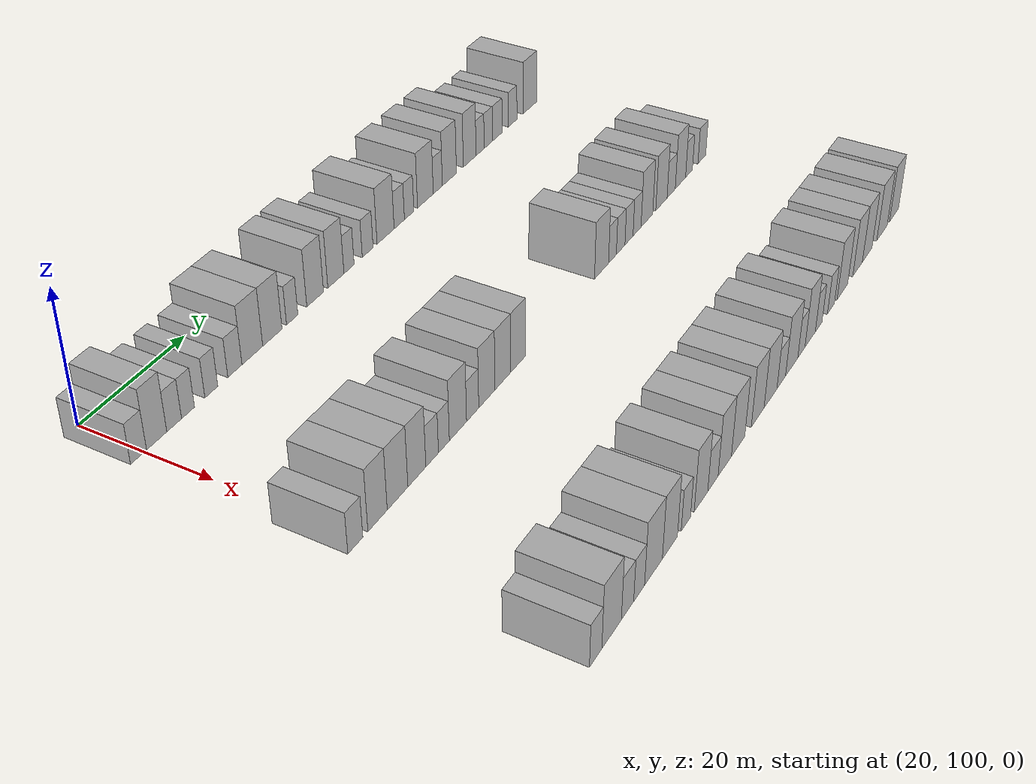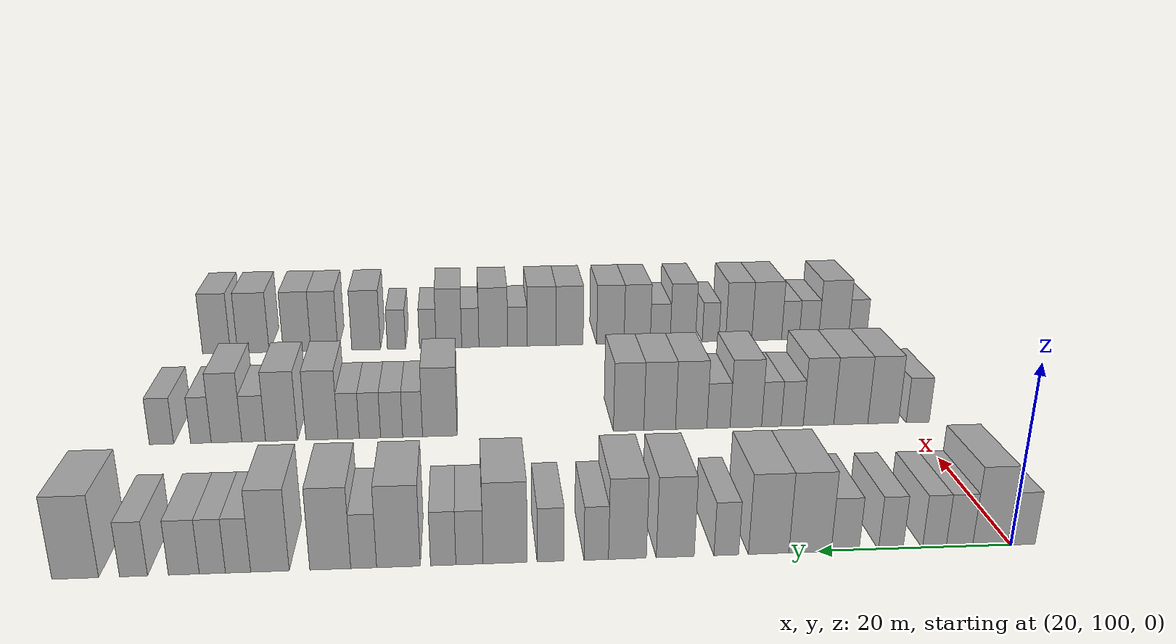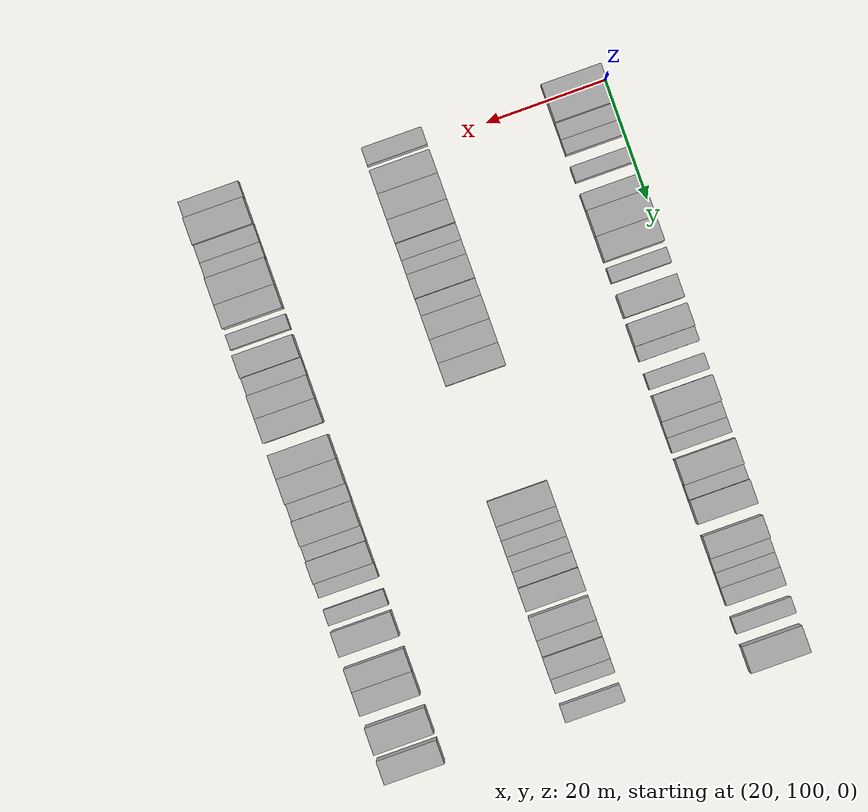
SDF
<sdf version="1.6">
 <world name="default">
  <model name="building_98">
   <static>1</static>
   <pose>25.0000 98.9397 0 0.000000 0.000000 0.000000</pose>
   <link name="link">
    <pose>0 0 3.00 0 0 0</pose>
    <collision name="collision"><geometry><box><size>10.0000 2.8587 6.0000</size></box></geometry></collision>
    <visual name="visual">
     <cast_shadows>0</cast_shadows>
     <geometry><box><size>10.0000 2.8587 6.0000</size></box></geometry>
     <material>
      <script>
       <uri>model://HANNAS_wall/materials/scripts</uri>
       <uri>model://HANNAS_wall/materials/textures</uri>
       <name>vrc/HANNAS_wall</name>
      </script>
     </material>
    </visual>
   </link>
  </model>
  <model name="building_99">
   <static>1</static>
   <pose>25.0000 102.2181 0 0.000000 0.000000 0.000000</pose>
   <link name="link">
    <pose>0 0 4.50 0 0 0</pose>
    <collision name="collision"><geometry><box><size>10.0000 3.6981 9.0000</size></box></geometry></collision>
    <visual name="visual">
     <cast_shadows>0</cast_shadows>
     <geometry><box><size>10.0000 3.6981 9.0000</size></box></geometry>
     <material>
      <script>
       <uri>model://HANNAS_wall/materials/scripts</uri>
       <uri>model://HANNAS_wall/materials/textures</uri>
       <name>vrc/HANNAS_wall</name>
      </script>
     </material>
    </visual>
   </link>
  </model>
  <model name="building_100">
   <static>1</static>
   <pose>25.0000 105.4448 0 0.000000 0.000000 0.000000</pose>
   <link name="link">
    <pose>0 0 3.00 0 0 0</pose>
    <collision name="collision"><geometry><box><size>10.0000 2.7553 6.0000</size></box></geometry></collision>
    <visual name="visual">
     <cast_shadows>0</cast_shadows>
     <geometry><box><size>10.0000 2.7553 6.0000</size></box></geometry>
     <material>
      <script>
       <uri>model://HANNAS_wall/materials/scripts</uri>
       <uri>model://HANNAS_wall/materials/textures</uri>
       <name>vrc/HANNAS_wall</name>
      </script>
     </material>
    </visual>
   </link>
  </model>
  <model name="building_101">
   <static>1</static>
   <pose>25.0000 108.0536 0 0.000000 0.000000 0.000000</pose>
   <link name="link">
    <pose>0 0 3.00 0 0 0</pose>
    <collision name="collision"><geometry><box><size>10.0000 2.4623 6.0000</size></box></geometry></collision>
    <visual name="visual">
     <cast_shadows>0</cast_shadows>
     <geometry><box><size>10.0000 2.4623 6.0000</size></box></geometry>
     <material>
      <script>
       <uri>model://HANNAS_wall/materials/scripts</uri>
       <uri>model://HANNAS_wall/materials/textures</uri>
       <name>vrc/HANNAS_wall</name>
      </script>
     </material>
    </visual>
   </link>
  </model>
  <model name="building_102">
   <static>1</static>
   <pose>25.0000 112.5618 0 0.000000 0.000000 0.000000</pose>
   <link name="link">
    <pose>0 0 3.00 0 0 0</pose>
    <collision name="collision"><geometry><box><size>10.0000 2.5542 6.0000</size></box></geometry></collision>
    <visual name="visual">
     <cast_shadows>0</cast_shadows>
     <geometry><box><size>10.0000 2.5542 6.0000</size></box></geometry>
     <material>
      <script>
       <uri>model://HANNAS_wall/materials/scripts</uri>
       <uri>model://HANNAS_wall/materials/textures</uri>
       <name>vrc/HANNAS_wall</name>
      </script>
     </material>
    </visual>
   </link>
  </model>
  <model name="building_103">
   <static>1</static>
   <pose>25.0000 117.2768 0 0.000000 0.000000 0.000000</pose>
   <link name="link">
    <pose>0 0 3.00 0 0 0</pose>
    <collision name="collision"><geometry><box><size>10.0000 2.8759 6.0000</size></box></geometry></collision>
    <visual name="visual">
     <cast_shadows>0</cast_shadows>
     <geometry><box><size>10.0000 2.8759 6.0000</size></box></geometry>
     <material>
      <script>
       <uri>model://HANNAS_wall/materials/scripts</uri>
       <uri>model://HANNAS_wall/materials/textures</uri>
       <name>vrc/HANNAS_wall</name>
      </script>
     </material>
    </visual>
   </link>
  </model>
  <model name="building_104">
   <static>1</static>
   <pose>25.0000 120.8821 0 0.000000 0.000000 0.000000</pose>
   <link name="link">
    <pose>0 0 4.50 0 0 0</pose>
    <collision name="collision"><geometry><box><size>10.0000 4.3346 9.0000</size></box></geometry></collision>
    <visual name="visual">
     <cast_shadows>0</cast_shadows>
     <geometry><box><size>10.0000 4.3346 9.0000</size></box></geometry>
     <material>
      <script>
       <uri>model://HANNAS_wall/materials/scripts</uri>
       <uri>model://HANNAS_wall/materials/textures</uri>
       <name>vrc/HANNAS_wall</name>
      </script>
     </material>
    </visual>
   </link>
  </model>
  <model name="building_105">
   <static>1</static>
   <pose>25.0000 125.1195 0 0.000000 0.000000 0.000000</pose>
   <link name="link">
    <pose>0 0 4.50 0 0 0</pose>
    <collision name="collision"><geometry><box><size>10.0000 4.1402 9.0000</size></box></geometry></collision>
    <visual name="visual">
     <cast_shadows>0</cast_shadows>
     <geometry><box><size>10.0000 4.1402 9.0000</size></box></geometry>
     <material>
      <script>
       <uri>model://HANNAS_wall/materials/scripts</uri>
       <uri>model://HANNAS_wall/materials/textures</uri>
       <name>vrc/HANNAS_wall</name>
      </script>
     </material>
    </visual>
   </link>
  </model>
  <model name="building_106">
   <static>1</static>
   <pose>25.0000 129.4470 0 0.000000 0.000000 0.000000</pose>
   <link name="link">
    <pose>0 0 3.00 0 0 0</pose>
    <collision name="collision"><geometry><box><size>10.0000 2.5149 6.0000</size></box></geometry></collision>
    <visual name="visual">
     <cast_shadows>0</cast_shadows>
     <geometry><box><size>10.0000 2.5149 6.0000</size></box></geometry>
     <material>
      <script>
       <uri>model://HANNAS_wall/materials/scripts</uri>
       <uri>model://HANNAS_wall/materials/textures</uri>
       <name>vrc/HANNAS_wall</name>
      </script>
     </material>
    </visual>
   </link>
  </model>
  <model name="building_107">
   <static>1</static>
   <pose>25.0000 134.6239 0 0.000000 0.000000 0.000000</pose>
   <link name="link">
    <pose>0 0 4.50 0 0 0</pose>
    <collision name="collision"><geometry><box><size>10.0000 3.8390 9.0000</size></box></geometry></collision>
    <visual name="visual">
     <cast_shadows>0</cast_shadows>
     <geometry><box><size>10.0000 3.8390 9.0000</size></box></geometry>
     <material>
      <script>
       <uri>model://HANNAS_wall/materials/scripts</uri>
       <uri>model://HANNAS_wall/materials/textures</uri>
       <name>vrc/HANNAS_wall</name>
      </script>
     </material>
    </visual>
   </link>
  </model>
  <model name="building_108">
   <static>1</static>
   <pose>25.0000 139.4498 0 0.000000 0.000000 0.000000</pose>
   <link name="link">
    <pose>0 0 4.50 0 0 0</pose>
    <collision name="collision"><geometry><box><size>10.0000 3.8127 9.0000</size></box></geometry></collision>
    <visual name="visual">
     <cast_shadows>0</cast_shadows>
     <geometry><box><size>10.0000 3.8127 9.0000</size></box></geometry>
     <material>
      <script>
       <uri>model://HANNAS_wall/materials/scripts</uri>
       <uri>model://HANNAS_wall/materials/textures</uri>
       <name>vrc/HANNAS_wall</name>
      </script>
     </material>
    </visual>
   </link>
  </model>
  <model name="building_109">
   <static>1</static>
   <pose>25.0000 142.5808 0 0.000000 0.000000 0.000000</pose>
   <link name="link">
    <pose>0 0 3.00 0 0 0</pose>
    <collision name="collision"><geometry><box><size>10.0000 2.4495 6.0000</size></box></geometry></collision>
    <visual name="visual">
     <cast_shadows>0</cast_shadows>
     <geometry><box><size>10.0000 2.4495 6.0000</size></box></geometry>
     <material>
      <script>
       <uri>model://HANNAS_wall/materials/scripts</uri>
       <uri>model://HANNAS_wall/materials/textures</uri>
       <name>vrc/HANNAS_wall</name>
      </script>
     </material>
    </visual>
   </link>
  </model>
  <model name="building_110">
   <static>1</static>
   <pose>25.0000 147.1483 0 0.000000 0.000000 0.000000</pose>
   <link name="link">
    <pose>0 0 3.00 0 0 0</pose>
    <collision name="collision"><geometry><box><size>10.0000 2.6855 6.0000</size></box></geometry></collision>
    <visual name="visual">
     <cast_shadows>0</cast_shadows>
     <geometry><box><size>10.0000 2.6855 6.0000</size></box></geometry>
     <material>
      <script>
       <uri>model://HANNAS_wall/materials/scripts</uri>
       <uri>model://HANNAS_wall/materials/textures</uri>
       <name>vrc/HANNAS_wall</name>
      </script>
     </material>
    </visual>
   </link>
  </model>
  <model name="building_111">
   <static>1</static>
   <pose>25.0000 151.6772 0 0.000000 0.000000 0.000000</pose>
   <link name="link">
    <pose>0 0 4.50 0 0 0</pose>
    <collision name="collision"><geometry><box><size>10.0000 4.3723 9.0000</size></box></geometry></collision>
    <visual name="visual">
     <cast_shadows>0</cast_shadows>
     <geometry><box><size>10.0000 4.3723 9.0000</size></box></geometry>
     <material>
      <script>
       <uri>model://HANNAS_wall/materials/scripts</uri>
       <uri>model://HANNAS_wall/materials/textures</uri>
       <name>vrc/HANNAS_wall</name>
      </script>
     </material>
    </visual>
   </link>
  </model>
  <model name="building_112">
   <static>1</static>
   <pose>25.0000 155.2105 0 0.000000 0.000000 0.000000</pose>
   <link name="link">
    <pose>0 0 3.00 0 0 0</pose>
    <collision name="collision"><geometry><box><size>10.0000 2.6941 6.0000</size></box></geometry></collision>
    <visual name="visual">
     <cast_shadows>0</cast_shadows>
     <geometry><box><size>10.0000 2.6941 6.0000</size></box></geometry>
     <material>
      <script>
       <uri>model://HANNAS_wall/materials/scripts</uri>
       <uri>model://HANNAS_wall/materials/textures</uri>
       <name>vrc/HANNAS_wall</name>
      </script>
     </material>
    </visual>
   </link>
  </model>
  <model name="building_113">
   <static>1</static>
   <pose>25.0000 157.8108 0 0.000000 0.000000 0.000000</pose>
   <link name="link">
    <pose>0 0 3.00 0 0 0</pose>
    <collision name="collision"><geometry><box><size>10.0000 2.5066 6.0000</size></box></geometry></collision>
    <visual name="visual">
     <cast_shadows>0</cast_shadows>
     <geometry><box><size>10.0000 2.5066 6.0000</size></box></geometry>
     <material>
      <script>
       <uri>model://HANNAS_wall/materials/scripts</uri>
       <uri>model://HANNAS_wall/materials/textures</uri>
       <name>vrc/HANNAS_wall</name>
      </script>
     </material>
    </visual>
   </link>
  </model>
  <model name="building_114">
   <static>1</static>
   <pose>25.0000 162.2112 0 0.000000 0.000000 0.000000</pose>
   <link name="link">
    <pose>0 0 4.50 0 0 0</pose>
    <collision name="collision"><geometry><box><size>10.0000 4.2942 9.0000</size></box></geometry></collision>
    <visual name="visual">
     <cast_shadows>0</cast_shadows>
     <geometry><box><size>10.0000 4.2942 9.0000</size></box></geometry>
     <material>
      <script>
       <uri>model://HANNAS_wall/materials/scripts</uri>
       <uri>model://HANNAS_wall/materials/textures</uri>
       <name>vrc/HANNAS_wall</name>
      </script>
     </material>
    </visual>
   </link>
  </model>
  <model name="building_115">
   <static>1</static>
   <pose>25.0000 165.6273 0 0.000000 0.000000 0.000000</pose>
   <link name="link">
    <pose>0 0 3.00 0 0 0</pose>
    <collision name="collision"><geometry><box><size>10.0000 2.5381 6.0000</size></box></geometry></collision>
    <visual name="visual">
     <cast_shadows>0</cast_shadows>
     <geometry><box><size>10.0000 2.5381 6.0000</size></box></geometry>
     <material>
      <script>
       <uri>model://HANNAS_wall/materials/scripts</uri>
       <uri>model://HANNAS_wall/materials/textures</uri>
       <name>vrc/HANNAS_wall</name>
      </script>
     </material>
    </visual>
   </link>
  </model>
  <model name="building_116">
   <static>1</static>
   <pose>25.0000 168.8938 0 0.000000 0.000000 0.000000</pose>
   <link name="link">
    <pose>0 0 4.50 0 0 0</pose>
    <collision name="collision"><geometry><box><size>10.0000 3.9948 9.0000</size></box></geometry></collision>
    <visual name="visual">
     <cast_shadows>0</cast_shadows>
     <geometry><box><size>10.0000 3.9948 9.0000</size></box></geometry>
     <material>
      <script>
       <uri>model://HANNAS_wall/materials/scripts</uri>
       <uri>model://HANNAS_wall/materials/textures</uri>
       <name>vrc/HANNAS_wall</name>
      </script>
     </material>
    </visual>
   </link>
  </model>
  <model name="building_117">
   <static>1</static>
   <pose>25.0000 174.7597 0 0.000000 0.000000 0.000000</pose>
   <link name="link">
    <pose>0 0 4.50 0 0 0</pose>
    <collision name="collision"><geometry><box><size>10.0000 3.7370 9.0000</size></box></geometry></collision>
    <visual name="visual">
     <cast_shadows>0</cast_shadows>
     <geometry><box><size>10.0000 3.7370 9.0000</size></box></geometry>
     <material>
      <script>
       <uri>model://HANNAS_wall/materials/scripts</uri>
       <uri>model://HANNAS_wall/materials/textures</uri>
       <name>vrc/HANNAS_wall</name>
      </script>
     </material>
    </visual>
   </link>
  </model>
  <model name="building_118">
   <static>1</static>
   <pose>25.0000 177.8474 0 0.000000 0.000000 0.000000</pose>
   <link name="link">
    <pose>0 0 3.00 0 0 0</pose>
    <collision name="collision"><geometry><box><size>10.0000 2.4384 6.0000</size></box></geometry></collision>
    <visual name="visual">
     <cast_shadows>0</cast_shadows>
     <geometry><box><size>10.0000 2.4384 6.0000</size></box></geometry>
     <material>
      <script>
       <uri>model://HANNAS_wall/materials/scripts</uri>
       <uri>model://HANNAS_wall/materials/textures</uri>
       <name>vrc/HANNAS_wall</name>
      </script>
     </material>
    </visual>
   </link>
  </model>
  <model name="building_119">
   <static>1</static>
   <pose>25.0000 180.3274 0 0.000000 0.000000 0.000000</pose>
   <link name="link">
    <pose>0 0 3.00 0 0 0</pose>
    <collision name="collision"><geometry><box><size>10.0000 2.5216 6.0000</size></box></geometry></collision>
    <visual name="visual">
     <cast_shadows>0</cast_shadows>
     <geometry><box><size>10.0000 2.5216 6.0000</size></box></geometry>
     <material>
      <script>
       <uri>model://HANNAS_wall/materials/scripts</uri>
       <uri>model://HANNAS_wall/materials/textures</uri>
       <name>vrc/HANNAS_wall</name>
      </script>
     </material>
    </visual>
   </link>
  </model>
  <model name="building_120">
   <static>1</static>
   <pose>25.0000 183.0725 0 0.000000 0.000000 0.000000</pose>
   <link name="link">
    <pose>0 0 3.00 0 0 0</pose>
    <collision name="collision"><geometry><box><size>10.0000 2.9686 6.0000</size></box></geometry></collision>
    <visual name="visual">
     <cast_shadows>0</cast_shadows>
     <geometry><box><size>10.0000 2.9686 6.0000</size></box></geometry>
     <material>
      <script>
       <uri>model://HANNAS_wall/materials/scripts</uri>
       <uri>model://HANNAS_wall/materials/textures</uri>
       <name>vrc/HANNAS_wall</name>
      </script>
     </material>
    </visual>
   </link>
  </model>
  <model name="building_121">
   <static>1</static>
   <pose>25.0000 187.8951 0 0.000000 0.000000 0.000000</pose>
   <link name="link">
    <pose>0 0 3.00 0 0 0</pose>
    <collision name="collision"><geometry><box><size>10.0000 2.6766 6.0000</size></box></geometry></collision>
    <visual name="visual">
     <cast_shadows>0</cast_shadows>
     <geometry><box><size>10.0000 2.6766 6.0000</size></box></geometry>
     <material>
      <script>
       <uri>model://HANNAS_wall/materials/scripts</uri>
       <uri>model://HANNAS_wall/materials/textures</uri>
       <name>vrc/HANNAS_wall</name>
      </script>
     </material>
    </visual>
   </link>
  </model>
  <model name="building_122">
   <static>1</static>
   <pose>25.0000 193.4580 0 0.000000 0.000000 0.000000</pose>
   <link name="link">
    <pose>0 0 4.50 0 0 0</pose>
    <collision name="collision"><geometry><box><size>10.0000 4.4493 9.0000</size></box></geometry></collision>
    <visual name="visual">
     <cast_shadows>0</cast_shadows>
     <geometry><box><size>10.0000 4.4493 9.0000</size></box></geometry>
     <material>
      <script>
       <uri>model://HANNAS_wall/materials/scripts</uri>
       <uri>model://HANNAS_wall/materials/textures</uri>
       <name>vrc/HANNAS_wall</name>
      </script>
     </material>
    </visual>
   </link>
  </model>
  <model name="building_240">
   <static>1</static>
   <pose>55.0000 98.9210 0 0.000000 0.000000 0.000000</pose>
   <link name="link">
    <pose>0 0 3.00 0 0 0</pose>
    <collision name="collision"><geometry><box><size>10.0000 2.9338 6.0000</size></box></geometry></collision>
    <visual name="visual">
     <cast_shadows>0</cast_shadows>
     <geometry><box><size>10.0000 2.9338 6.0000</size></box></geometry>
     <material>
      <script>
       <uri>model://HANNAS_wall/materials/scripts</uri>
       <uri>model://HANNAS_wall/materials/textures</uri>
       <name>vrc/HANNAS_wall</name>
      </script>
     </material>
    </visual>
   </link>
  </model>
  <model name="building_241">
   <static>1</static>
   <pose>55.0000 103.3432 0 0.000000 0.000000 0.000000</pose>
   <link name="link">
    <pose>0 0 4.50 0 0 0</pose>
    <collision name="collision"><geometry><box><size>10.0000 3.9107 9.0000</size></box></geometry></collision>
    <visual name="visual">
     <cast_shadows>0</cast_shadows>
     <geometry><box><size>10.0000 3.9107 9.0000</size></box></geometry>
     <material>
      <script>
       <uri>model://HANNAS_wall/materials/scripts</uri>
       <uri>model://HANNAS_wall/materials/textures</uri>
       <name>vrc/HANNAS_wall</name>
      </script>
     </material>
    </visual>
   </link>
  </model>
  <model name="building_242">
   <static>1</static>
   <pose>55.0000 107.4606 0 0.000000 0.000000 0.000000</pose>
   <link name="link">
    <pose>0 0 4.50 0 0 0</pose>
    <collision name="collision"><geometry><box><size>10.0000 4.3241 9.0000</size></box></geometry></collision>
    <visual name="visual">
     <cast_shadows>0</cast_shadows>
     <geometry><box><size>10.0000 4.3241 9.0000</size></box></geometry>
     <material>
      <script>
       <uri>model://HANNAS_wall/materials/scripts</uri>
       <uri>model://HANNAS_wall/materials/textures</uri>
       <name>vrc/HANNAS_wall</name>
      </script>
     </material>
    </visual>
   </link>
  </model>
  <model name="building_243">
   <static>1</static>
   <pose>55.0000 111.5592 0 0.000000 0.000000 0.000000</pose>
   <link name="link">
    <pose>0 0 4.50 0 0 0</pose>
    <collision name="collision"><geometry><box><size>10.0000 3.8731 9.0000</size></box></geometry></collision>
    <visual name="visual">
     <cast_shadows>0</cast_shadows>
     <geometry><box><size>10.0000 3.8731 9.0000</size></box></geometry>
     <material>
      <script>
       <uri>model://HANNAS_wall/materials/scripts</uri>
       <uri>model://HANNAS_wall/materials/textures</uri>
       <name>vrc/HANNAS_wall</name>
      </script>
     </material>
    </visual>
   </link>
  </model>
  <model name="building_244">
   <static>1</static>
   <pose>55.0000 114.8889 0 0.000000 0.000000 0.000000</pose>
   <link name="link">
    <pose>0 0 3.00 0 0 0</pose>
    <collision name="collision"><geometry><box><size>10.0000 2.7862 6.0000</size></box></geometry></collision>
    <visual name="visual">
     <cast_shadows>0</cast_shadows>
     <geometry><box><size>10.0000 2.7862 6.0000</size></box></geometry>
     <material>
      <script>
       <uri>model://HANNAS_wall/materials/scripts</uri>
       <uri>model://HANNAS_wall/materials/textures</uri>
       <name>vrc/HANNAS_wall</name>
      </script>
     </material>
    </visual>
   </link>
  </model>
  <model name="building_245">
   <static>1</static>
   <pose>55.0000 117.5111 0 0.000000 0.000000 0.000000</pose>
   <link name="link">
    <pose>0 0 3.00 0 0 0</pose>
    <collision name="collision"><geometry><box><size>10.0000 2.4584 6.0000</size></box></geometry></collision>
    <visual name="visual">
     <cast_shadows>0</cast_shadows>
     <geometry><box><size>10.0000 2.4584 6.0000</size></box></geometry>
     <material>
      <script>
       <uri>model://HANNAS_wall/materials/scripts</uri>
       <uri>model://HANNAS_wall/materials/textures</uri>
       <name>vrc/HANNAS_wall</name>
      </script>
     </material>
    </visual>
   </link>
  </model>
  <model name="building_246">
   <static>1</static>
   <pose>55.0000 120.7285 0 0.000000 0.000000 0.000000</pose>
   <link name="link">
    <pose>0 0 4.50 0 0 0</pose>
    <collision name="collision"><geometry><box><size>10.0000 3.9764 9.0000</size></box></geometry></collision>
    <visual name="visual">
     <cast_shadows>0</cast_shadows>
     <geometry><box><size>10.0000 3.9764 9.0000</size></box></geometry>
     <material>
      <script>
       <uri>model://HANNAS_wall/materials/scripts</uri>
       <uri>model://HANNAS_wall/materials/textures</uri>
       <name>vrc/HANNAS_wall</name>
      </script>
     </material>
    </visual>
   </link>
  </model>
  <model name="building_247">
   <static>1</static>
   <pose>55.0000 124.1607 0 0.000000 0.000000 0.000000</pose>
   <link name="link">
    <pose>0 0 3.00 0 0 0</pose>
    <collision name="collision"><geometry><box><size>10.0000 2.8880 6.0000</size></box></geometry></collision>
    <visual name="visual">
     <cast_shadows>0</cast_shadows>
     <geometry><box><size>10.0000 2.8880 6.0000</size></box></geometry>
     <material>
      <script>
       <uri>model://HANNAS_wall/materials/scripts</uri>
       <uri>model://HANNAS_wall/materials/textures</uri>
       <name>vrc/HANNAS_wall</name>
      </script>
     </material>
    </visual>
   </link>
  </model>
  <model name="building_248">
   <static>1</static>
   <pose>55.0000 127.5682 0 0.000000 0.000000 0.000000</pose>
   <link name="link">
    <pose>0 0 4.50 0 0 0</pose>
    <collision name="collision"><geometry><box><size>10.0000 3.9270 9.0000</size></box></geometry></collision>
    <visual name="visual">
     <cast_shadows>0</cast_shadows>
     <geometry><box><size>10.0000 3.9270 9.0000</size></box></geometry>
     <material>
      <script>
       <uri>model://HANNAS_wall/materials/scripts</uri>
       <uri>model://HANNAS_wall/materials/textures</uri>
       <name>vrc/HANNAS_wall</name>
      </script>
     </material>
    </visual>
   </link>
  </model>
  <model name="building_249">
   <static>1</static>
   <pose>55.0000 131.5031 0 0.000000 0.000000 0.000000</pose>
   <link name="link">
    <pose>0 0 4.50 0 0 0</pose>
    <collision name="collision"><geometry><box><size>10.0000 3.9429 9.0000</size></box></geometry></collision>
    <visual name="visual">
     <cast_shadows>0</cast_shadows>
     <geometry><box><size>10.0000 3.9429 9.0000</size></box></geometry>
     <material>
      <script>
       <uri>model://HANNAS_wall/materials/scripts</uri>
       <uri>model://HANNAS_wall/materials/textures</uri>
       <name>vrc/HANNAS_wall</name>
      </script>
     </material>
    </visual>
   </link>
  </model>
  <model name="building_250">
   <static>1</static>
   <pose>55.0000 135.3612 0 0.000000 0.000000 0.000000</pose>
   <link name="link">
    <pose>0 0 4.50 0 0 0</pose>
    <collision name="collision"><geometry><box><size>10.0000 3.7732 9.0000</size></box></geometry></collision>
    <visual name="visual">
     <cast_shadows>0</cast_shadows>
     <geometry><box><size>10.0000 3.7732 9.0000</size></box></geometry>
     <material>
      <script>
       <uri>model://HANNAS_wall/materials/scripts</uri>
       <uri>model://HANNAS_wall/materials/textures</uri>
       <name>vrc/HANNAS_wall</name>
      </script>
     </material>
    </visual>
   </link>
  </model>
  <model name="building_251">
   <static>1</static>
   <pose>55.0000 158.5565 0 0.000000 0.000000 0.000000</pose>
   <link name="link">
    <pose>0 0 4.50 0 0 0</pose>
    <collision name="collision"><geometry><box><size>10.0000 4.2058 9.0000</size></box></geometry></collision>
    <visual name="visual">
     <cast_shadows>0</cast_shadows>
     <geometry><box><size>10.0000 4.2058 9.0000</size></box></geometry>
     <material>
      <script>
       <uri>model://HANNAS_wall/materials/scripts</uri>
       <uri>model://HANNAS_wall/materials/textures</uri>
       <name>vrc/HANNAS_wall</name>
      </script>
     </material>
    </visual>
   </link>
  </model>
  <model name="building_252">
   <static>1</static>
   <pose>55.0000 161.8616 0 0.000000 0.000000 0.000000</pose>
   <link name="link">
    <pose>0 0 3.00 0 0 0</pose>
    <collision name="collision"><geometry><box><size>10.0000 2.4043 6.0000</size></box></geometry></collision>
    <visual name="visual">
     <cast_shadows>0</cast_shadows>
     <geometry><box><size>10.0000 2.4043 6.0000</size></box></geometry>
     <material>
      <script>
       <uri>model://HANNAS_wall/materials/scripts</uri>
       <uri>model://HANNAS_wall/materials/textures</uri>
       <name>vrc/HANNAS_wall</name>
      </script>
     </material>
    </visual>
   </link>
  </model>
  <model name="building_253">
   <static>1</static>
   <pose>55.0000 164.4022 0 0.000000 0.000000 0.000000</pose>
   <link name="link">
    <pose>0 0 3.00 0 0 0</pose>
    <collision name="collision"><geometry><box><size>10.0000 2.6771 6.0000</size></box></geometry></collision>
    <visual name="visual">
     <cast_shadows>0</cast_shadows>
     <geometry><box><size>10.0000 2.6771 6.0000</size></box></geometry>
     <material>
      <script>
       <uri>model://HANNAS_wall/materials/scripts</uri>
       <uri>model://HANNAS_wall/materials/textures</uri>
       <name>vrc/HANNAS_wall</name>
      </script>
     </material>
    </visual>
   </link>
  </model>
  <model name="building_254">
   <static>1</static>
   <pose>55.0000 167.0211 0 0.000000 0.000000 0.000000</pose>
   <link name="link">
    <pose>0 0 3.00 0 0 0</pose>
    <collision name="collision"><geometry><box><size>10.0000 2.5607 6.0000</size></box></geometry></collision>
    <visual name="visual">
     <cast_shadows>0</cast_shadows>
     <geometry><box><size>10.0000 2.5607 6.0000</size></box></geometry>
     <material>
      <script>
       <uri>model://HANNAS_wall/materials/scripts</uri>
       <uri>model://HANNAS_wall/materials/textures</uri>
       <name>vrc/HANNAS_wall</name>
      </script>
     </material>
    </visual>
   </link>
  </model>
  <model name="building_255">
   <static>1</static>
   <pose>55.0000 169.5958 0 0.000000 0.000000 0.000000</pose>
   <link name="link">
    <pose>0 0 3.00 0 0 0</pose>
    <collision name="collision"><geometry><box><size>10.0000 2.5886 6.0000</size></box></geometry></collision>
    <visual name="visual">
     <cast_shadows>0</cast_shadows>
     <geometry><box><size>10.0000 2.5886 6.0000</size></box></geometry>
     <material>
      <script>
       <uri>model://HANNAS_wall/materials/scripts</uri>
       <uri>model://HANNAS_wall/materials/textures</uri>
       <name>vrc/HANNAS_wall</name>
      </script>
     </material>
    </visual>
   </link>
  </model>
  <model name="building_256">
   <static>1</static>
   <pose>55.0000 172.8146 0 0.000000 0.000000 0.000000</pose>
   <link name="link">
    <pose>0 0 4.50 0 0 0</pose>
    <collision name="collision"><geometry><box><size>10.0000 3.8491 9.0000</size></box></geometry></collision>
    <visual name="visual">
     <cast_shadows>0</cast_shadows>
     <geometry><box><size>10.0000 3.8491 9.0000</size></box></geometry>
     <material>
      <script>
       <uri>model://HANNAS_wall/materials/scripts</uri>
       <uri>model://HANNAS_wall/materials/textures</uri>
       <name>vrc/HANNAS_wall</name>
      </script>
     </material>
    </visual>
   </link>
  </model>
  <model name="building_257">
   <static>1</static>
   <pose>55.0000 177.6566 0 0.000000 0.000000 0.000000</pose>
   <link name="link">
    <pose>0 0 4.50 0 0 0</pose>
    <collision name="collision"><geometry><box><size>10.0000 3.8349 9.0000</size></box></geometry></collision>
    <visual name="visual">
     <cast_shadows>0</cast_shadows>
     <geometry><box><size>10.0000 3.8349 9.0000</size></box></geometry>
     <material>
      <script>
       <uri>model://HANNAS_wall/materials/scripts</uri>
       <uri>model://HANNAS_wall/materials/textures</uri>
       <name>vrc/HANNAS_wall</name>
      </script>
     </material>
    </visual>
   </link>
  </model>
  <model name="building_258">
   <static>1</static>
   <pose>55.0000 180.9894 0 0.000000 0.000000 0.000000</pose>
   <link name="link">
    <pose>0 0 3.00 0 0 0</pose>
    <collision name="collision"><geometry><box><size>10.0000 2.8307 6.0000</size></box></geometry></collision>
    <visual name="visual">
     <cast_shadows>0</cast_shadows>
     <geometry><box><size>10.0000 2.8307 6.0000</size></box></geometry>
     <material>
      <script>
       <uri>model://HANNAS_wall/materials/scripts</uri>
       <uri>model://HANNAS_wall/materials/textures</uri>
       <name>vrc/HANNAS_wall</name>
      </script>
     </material>
    </visual>
   </link>
  </model>
  <model name="building_259">
   <static>1</static>
   <pose>55.0000 184.2247 0 0.000000 0.000000 0.000000</pose>
   <link name="link">
    <pose>0 0 4.50 0 0 0</pose>
    <collision name="collision"><geometry><box><size>10.0000 3.6399 9.0000</size></box></geometry></collision>
    <visual name="visual">
     <cast_shadows>0</cast_shadows>
     <geometry><box><size>10.0000 3.6399 9.0000</size></box></geometry>
     <material>
      <script>
       <uri>model://HANNAS_wall/materials/scripts</uri>
       <uri>model://HANNAS_wall/materials/textures</uri>
       <name>vrc/HANNAS_wall</name>
      </script>
     </material>
    </visual>
   </link>
  </model>
  <model name="building_260">
   <static>1</static>
   <pose>55.0000 187.2729 0 0.000000 0.000000 0.000000</pose>
   <link name="link">
    <pose>0 0 3.00 0 0 0</pose>
    <collision name="collision"><geometry><box><size>10.0000 2.4564 6.0000</size></box></geometry></collision>
    <visual name="visual">
     <cast_shadows>0</cast_shadows>
     <geometry><box><size>10.0000 2.4564 6.0000</size></box></geometry>
     <material>
      <script>
       <uri>model://HANNAS_wall/materials/scripts</uri>
       <uri>model://HANNAS_wall/materials/textures</uri>
       <name>vrc/HANNAS_wall</name>
      </script>
     </material>
    </visual>
   </link>
  </model>
  <model name="building_261">
   <static>1</static>
   <pose>55.0000 191.9405 0 0.000000 0.000000 0.000000</pose>
   <link name="link">
    <pose>0 0 3.00 0 0 0</pose>
    <collision name="collision"><geometry><box><size>10.0000 2.8789 6.0000</size></box></geometry></collision>
    <visual name="visual">
     <cast_shadows>0</cast_shadows>
     <geometry><box><size>10.0000 2.8789 6.0000</size></box></geometry>
     <material>
      <script>
       <uri>model://HANNAS_wall/materials/scripts</uri>
       <uri>model://HANNAS_wall/materials/textures</uri>
       <name>vrc/HANNAS_wall</name>
      </script>
     </material>
    </visual>
   </link>
  </model>
  <model name="building_378">
   <static>1</static>
   <pose>85.0000 97.2057 0 0.000000 0.000000 0.000000</pose>
   <link name="link">
    <pose>0 0 3.00 0 0 0</pose>
    <collision name="collision"><geometry><box><size>10.0000 2.7726 6.0000</size></box></geometry></collision>
    <visual name="visual">
     <cast_shadows>0</cast_shadows>
     <geometry><box><size>10.0000 2.7726 6.0000</size></box></geometry>
     <material>
      <script>
       <uri>model://HANNAS_wall/materials/scripts</uri>
       <uri>model://HANNAS_wall/materials/textures</uri>
       <name>vrc/HANNAS_wall</name>
      </script>
     </material>
    </visual>
   </link>
  </model>
  <model name="building_379">
   <static>1</static>
   <pose>85.0000 100.8370 0 0.000000 0.000000 0.000000</pose>
   <link name="link">
    <pose>0 0 4.50 0 0 0</pose>
    <collision name="collision"><geometry><box><size>10.0000 4.4900 9.0000</size></box></geometry></collision>
    <visual name="visual">
     <cast_shadows>0</cast_shadows>
     <geometry><box><size>10.0000 4.4900 9.0000</size></box></geometry>
     <material>
      <script>
       <uri>model://HANNAS_wall/materials/scripts</uri>
       <uri>model://HANNAS_wall/materials/textures</uri>
       <name>vrc/HANNAS_wall</name>
      </script>
     </material>
    </visual>
   </link>
  </model>
  <model name="building_380">
   <static>1</static>
   <pose>85.0000 104.5445 0 0.000000 0.000000 0.000000</pose>
   <link name="link">
    <pose>0 0 3.00 0 0 0</pose>
    <collision name="collision"><geometry><box><size>10.0000 2.9251 6.0000</size></box></geometry></collision>
    <visual name="visual">
     <cast_shadows>0</cast_shadows>
     <geometry><box><size>10.0000 2.9251 6.0000</size></box></geometry>
     <material>
      <script>
       <uri>model://HANNAS_wall/materials/scripts</uri>
       <uri>model://HANNAS_wall/materials/textures</uri>
       <name>vrc/HANNAS_wall</name>
      </script>
     </material>
    </visual>
   </link>
  </model>
  <model name="building_381">
   <static>1</static>
   <pose>85.0000 107.3297 0 0.000000 0.000000 0.000000</pose>
   <link name="link">
    <pose>0 0 3.00 0 0 0</pose>
    <collision name="collision"><geometry><box><size>10.0000 2.6452 6.0000</size></box></geometry></collision>
    <visual name="visual">
     <cast_shadows>0</cast_shadows>
     <geometry><box><size>10.0000 2.6452 6.0000</size></box></geometry>
     <material>
      <script>
       <uri>model://HANNAS_wall/materials/scripts</uri>
       <uri>model://HANNAS_wall/materials/textures</uri>
       <name>vrc/HANNAS_wall</name>
      </script>
     </material>
    </visual>
   </link>
  </model>
  <model name="building_382">
   <static>1</static>
   <pose>85.0000 110.8809 0 0.000000 0.000000 0.000000</pose>
   <link name="link">
    <pose>0 0 4.50 0 0 0</pose>
    <collision name="collision"><geometry><box><size>10.0000 4.4573 9.0000</size></box></geometry></collision>
    <visual name="visual">
     <cast_shadows>0</cast_shadows>
     <geometry><box><size>10.0000 4.4573 9.0000</size></box></geometry>
     <material>
      <script>
       <uri>model://HANNAS_wall/materials/scripts</uri>
       <uri>model://HANNAS_wall/materials/textures</uri>
       <name>vrc/HANNAS_wall</name>
      </script>
     </material>
    </visual>
   </link>
  </model>
  <model name="building_383">
   <static>1</static>
   <pose>85.0000 115.0597 0 0.000000 0.000000 0.000000</pose>
   <link name="link">
    <pose>0 0 4.50 0 0 0</pose>
    <collision name="collision"><geometry><box><size>10.0000 3.9004 9.0000</size></box></geometry></collision>
    <visual name="visual">
     <cast_shadows>0</cast_shadows>
     <geometry><box><size>10.0000 3.9004 9.0000</size></box></geometry>
     <material>
      <script>
       <uri>model://HANNAS_wall/materials/scripts</uri>
       <uri>model://HANNAS_wall/materials/textures</uri>
       <name>vrc/HANNAS_wall</name>
      </script>
     </material>
    </visual>
   </link>
  </model>
  <model name="building_384">
   <static>1</static>
   <pose>85.0000 119.2530 0 0.000000 0.000000 0.000000</pose>
   <link name="link">
    <pose>0 0 3.00 0 0 0</pose>
    <collision name="collision"><geometry><box><size>10.0000 2.4861 6.0000</size></box></geometry></collision>
    <visual name="visual">
     <cast_shadows>0</cast_shadows>
     <geometry><box><size>10.0000 2.4861 6.0000</size></box></geometry>
     <material>
      <script>
       <uri>model://HANNAS_wall/materials/scripts</uri>
       <uri>model://HANNAS_wall/materials/textures</uri>
       <name>vrc/HANNAS_wall</name>
      </script>
     </material>
    </visual>
   </link>
  </model>
  <model name="building_385">
   <static>1</static>
   <pose>85.0000 123.3748 0 0.000000 0.000000 0.000000</pose>
   <link name="link">
    <pose>0 0 4.50 0 0 0</pose>
    <collision name="collision"><geometry><box><size>10.0000 3.7576 9.0000</size></box></geometry></collision>
    <visual name="visual">
     <cast_shadows>0</cast_shadows>
     <geometry><box><size>10.0000 3.7576 9.0000</size></box></geometry>
     <material>
      <script>
       <uri>model://HANNAS_wall/materials/scripts</uri>
       <uri>model://HANNAS_wall/materials/textures</uri>
       <name>vrc/HANNAS_wall</name>
      </script>
     </material>
    </visual>
   </link>
  </model>
  <model name="building_386">
   <static>1</static>
   <pose>85.0000 126.7271 0 0.000000 0.000000 0.000000</pose>
   <link name="link">
    <pose>0 0 3.00 0 0 0</pose>
    <collision name="collision"><geometry><box><size>10.0000 2.9468 6.0000</size></box></geometry></collision>
    <visual name="visual">
     <cast_shadows>0</cast_shadows>
     <geometry><box><size>10.0000 2.9468 6.0000</size></box></geometry>
     <material>
      <script>
       <uri>model://HANNAS_wall/materials/scripts</uri>
       <uri>model://HANNAS_wall/materials/textures</uri>
       <name>vrc/HANNAS_wall</name>
      </script>
     </material>
    </visual>
   </link>
  </model>
  <model name="building_387">
   <static>1</static>
   <pose>85.0000 130.1377 0 0.000000 0.000000 0.000000</pose>
   <link name="link">
    <pose>0 0 4.50 0 0 0</pose>
    <collision name="collision"><geometry><box><size>10.0000 3.8744 9.0000</size></box></geometry></collision>
    <visual name="visual">
     <cast_shadows>0</cast_shadows>
     <geometry><box><size>10.0000 3.8744 9.0000</size></box></geometry>
     <material>
      <script>
       <uri>model://HANNAS_wall/materials/scripts</uri>
       <uri>model://HANNAS_wall/materials/textures</uri>
       <name>vrc/HANNAS_wall</name>
      </script>
     </material>
    </visual>
   </link>
  </model>
  <model name="building_388">
   <static>1</static>
   <pose>85.0000 134.0867 0 0.000000 0.000000 0.000000</pose>
   <link name="link">
    <pose>0 0 4.50 0 0 0</pose>
    <collision name="collision"><geometry><box><size>10.0000 4.0235 9.0000</size></box></geometry></collision>
    <visual name="visual">
     <cast_shadows>0</cast_shadows>
     <geometry><box><size>10.0000 4.0235 9.0000</size></box></geometry>
     <material>
      <script>
       <uri>model://HANNAS_wall/materials/scripts</uri>
       <uri>model://HANNAS_wall/materials/textures</uri>
       <name>vrc/HANNAS_wall</name>
      </script>
     </material>
    </visual>
   </link>
  </model>
  <model name="building_389">
   <static>1</static>
   <pose>85.0000 140.0992 0 0.000000 0.000000 0.000000</pose>
   <link name="link">
    <pose>0 0 4.50 0 0 0</pose>
    <collision name="collision"><geometry><box><size>10.0000 4.0015 9.0000</size></box></geometry></collision>
    <visual name="visual">
     <cast_shadows>0</cast_shadows>
     <geometry><box><size>10.0000 4.0015 9.0000</size></box></geometry>
     <material>
      <script>
       <uri>model://HANNAS_wall/materials/scripts</uri>
       <uri>model://HANNAS_wall/materials/textures</uri>
       <name>vrc/HANNAS_wall</name>
      </script>
     </material>
    </visual>
   </link>
  </model>
  <model name="building_390">
   <static>1</static>
   <pose>85.0000 144.1892 0 0.000000 0.000000 0.000000</pose>
   <link name="link">
    <pose>0 0 4.50 0 0 0</pose>
    <collision name="collision"><geometry><box><size>10.0000 4.1787 9.0000</size></box></geometry></collision>
    <visual name="visual">
     <cast_shadows>0</cast_shadows>
     <geometry><box><size>10.0000 4.1787 9.0000</size></box></geometry>
     <material>
      <script>
       <uri>model://HANNAS_wall/materials/scripts</uri>
       <uri>model://HANNAS_wall/materials/textures</uri>
       <name>vrc/HANNAS_wall</name>
      </script>
     </material>
    </visual>
   </link>
  </model>
  <model name="building_391">
   <static>1</static>
   <pose>85.0000 147.7016 0 0.000000 0.000000 0.000000</pose>
   <link name="link">
    <pose>0 0 3.00 0 0 0</pose>
    <collision name="collision"><geometry><box><size>10.0000 2.8460 6.0000</size></box></geometry></collision>
    <visual name="visual">
     <cast_shadows>0</cast_shadows>
     <geometry><box><size>10.0000 2.8460 6.0000</size></box></geometry>
     <material>
      <script>
       <uri>model://HANNAS_wall/materials/scripts</uri>
       <uri>model://HANNAS_wall/materials/textures</uri>
       <name>vrc/HANNAS_wall</name>
      </script>
     </material>
    </visual>
   </link>
  </model>
  <model name="building_392">
   <static>1</static>
   <pose>85.0000 151.2139 0 0.000000 0.000000 0.000000</pose>
   <link name="link">
    <pose>0 0 4.50 0 0 0</pose>
    <collision name="collision"><geometry><box><size>10.0000 4.1787 9.0000</size></box></geometry></collision>
    <visual name="visual">
     <cast_shadows>0</cast_shadows>
     <geometry><box><size>10.0000 4.1787 9.0000</size></box></geometry>
     <material>
      <script>
       <uri>model://HANNAS_wall/materials/scripts</uri>
       <uri>model://HANNAS_wall/materials/textures</uri>
       <name>vrc/HANNAS_wall</name>
      </script>
     </material>
    </visual>
   </link>
  </model>
  <model name="building_393">
   <static>1</static>
   <pose>85.0000 154.5531 0 0.000000 0.000000 0.000000</pose>
   <link name="link">
    <pose>0 0 3.00 0 0 0</pose>
    <collision name="collision"><geometry><box><size>10.0000 2.4997 6.0000</size></box></geometry></collision>
    <visual name="visual">
     <cast_shadows>0</cast_shadows>
     <geometry><box><size>10.0000 2.4997 6.0000</size></box></geometry>
     <material>
      <script>
       <uri>model://HANNAS_wall/materials/scripts</uri>
       <uri>model://HANNAS_wall/materials/textures</uri>
       <name>vrc/HANNAS_wall</name>
      </script>
     </material>
    </visual>
   </link>
  </model>
  <model name="building_394">
   <static>1</static>
   <pose>85.0000 157.6504 0 0.000000 0.000000 0.000000</pose>
   <link name="link">
    <pose>0 0 4.50 0 0 0</pose>
    <collision name="collision"><geometry><box><size>10.0000 3.6948 9.0000</size></box></geometry></collision>
    <visual name="visual">
     <cast_shadows>0</cast_shadows>
     <geometry><box><size>10.0000 3.6948 9.0000</size></box></geometry>
     <material>
      <script>
       <uri>model://HANNAS_wall/materials/scripts</uri>
       <uri>model://HANNAS_wall/materials/textures</uri>
       <name>vrc/HANNAS_wall</name>
      </script>
     </material>
    </visual>
   </link>
  </model>
  <model name="building_395">
   <static>1</static>
   <pose>85.0000 160.7087 0 0.000000 0.000000 0.000000</pose>
   <link name="link">
    <pose>0 0 3.00 0 0 0</pose>
    <collision name="collision"><geometry><box><size>10.0000 2.4217 6.0000</size></box></geometry></collision>
    <visual name="visual">
     <cast_shadows>0</cast_shadows>
     <geometry><box><size>10.0000 2.4217 6.0000</size></box></geometry>
     <material>
      <script>
       <uri>model://HANNAS_wall/materials/scripts</uri>
       <uri>model://HANNAS_wall/materials/textures</uri>
       <name>vrc/HANNAS_wall</name>
      </script>
     </material>
    </visual>
   </link>
  </model>
  <model name="building_396">
   <static>1</static>
   <pose>85.0000 165.2289 0 0.000000 0.000000 0.000000</pose>
   <link name="link">
    <pose>0 0 3.00 0 0 0</pose>
    <collision name="collision"><geometry><box><size>10.0000 2.6187 6.0000</size></box></geometry></collision>
    <visual name="visual">
     <cast_shadows>0</cast_shadows>
     <geometry><box><size>10.0000 2.6187 6.0000</size></box></geometry>
     <material>
      <script>
       <uri>model://HANNAS_wall/materials/scripts</uri>
       <uri>model://HANNAS_wall/materials/textures</uri>
       <name>vrc/HANNAS_wall</name>
      </script>
     </material>
    </visual>
   </link>
  </model>
  <model name="building_397">
   <static>1</static>
   <pose>85.0000 169.5932 0 0.000000 0.000000 0.000000</pose>
   <link name="link">
    <pose>0 0 4.50 0 0 0</pose>
    <collision name="collision"><geometry><box><size>10.0000 4.1099 9.0000</size></box></geometry></collision>
    <visual name="visual">
     <cast_shadows>0</cast_shadows>
     <geometry><box><size>10.0000 4.1099 9.0000</size></box></geometry>
     <material>
      <script>
       <uri>model://HANNAS_wall/materials/scripts</uri>
       <uri>model://HANNAS_wall/materials/textures</uri>
       <name>vrc/HANNAS_wall</name>
      </script>
     </material>
    </visual>
   </link>
  </model>
  <model name="building_398">
   <static>1</static>
   <pose>85.0000 175.5719 0 0.000000 0.000000 0.000000</pose>
   <link name="link">
    <pose>0 0 4.50 0 0 0</pose>
    <collision name="collision"><geometry><box><size>10.0000 3.8475 9.0000</size></box></geometry></collision>
    <visual name="visual">
     <cast_shadows>0</cast_shadows>
     <geometry><box><size>10.0000 3.8475 9.0000</size></box></geometry>
     <material>
      <script>
       <uri>model://HANNAS_wall/materials/scripts</uri>
       <uri>model://HANNAS_wall/materials/textures</uri>
       <name>vrc/HANNAS_wall</name>
      </script>
     </material>
    </visual>
   </link>
  </model>
  <model name="building_399">
   <static>1</static>
   <pose>85.0000 179.4720 0 0.000000 0.000000 0.000000</pose>
   <link name="link">
    <pose>0 0 4.50 0 0 0</pose>
    <collision name="collision"><geometry><box><size>10.0000 3.9526 9.0000</size></box></geometry></collision>
    <visual name="visual">
     <cast_shadows>0</cast_shadows>
     <geometry><box><size>10.0000 3.9526 9.0000</size></box></geometry>
     <material>
      <script>
       <uri>model://HANNAS_wall/materials/scripts</uri>
       <uri>model://HANNAS_wall/materials/textures</uri>
       <name>vrc/HANNAS_wall</name>
      </script>
     </material>
    </visual>
   </link>
  </model>
  <model name="building_400">
   <static>1</static>
   <pose>85.0000 185.6883 0 0.000000 0.000000 0.000000</pose>
   <link name="link">
    <pose>0 0 4.50 0 0 0</pose>
    <collision name="collision"><geometry><box><size>10.0000 4.4800 9.0000</size></box></geometry></collision>
    <visual name="visual">
     <cast_shadows>0</cast_shadows>
     <geometry><box><size>10.0000 4.4800 9.0000</size></box></geometry>
     <material>
      <script>
       <uri>model://HANNAS_wall/materials/scripts</uri>
       <uri>model://HANNAS_wall/materials/textures</uri>
       <name>vrc/HANNAS_wall</name>
      </script>
     </material>
    </visual>
   </link>
  </model>
  <model name="building_401">
   <static>1</static>
   <pose>85.0000 190.9023 0 0.000000 0.000000 0.000000</pose>
   <link name="link">
    <pose>0 0 4.50 0 0 0</pose>
    <collision name="collision"><geometry><box><size>10.0000 3.9481 9.0000</size></box></geometry></collision>
    <visual name="visual">
     <cast_shadows>0</cast_shadows>
     <geometry><box><size>10.0000 3.9481 9.0000</size></box></geometry>
     <material>
      <script>
       <uri>model://HANNAS_wall/materials/scripts</uri>
       <uri>model://HANNAS_wall/materials/textures</uri>
       <name>vrc/HANNAS_wall</name>
      </script>
     </material>
    </visual>
   </link>
  </model>
 </world>
</sdf>
